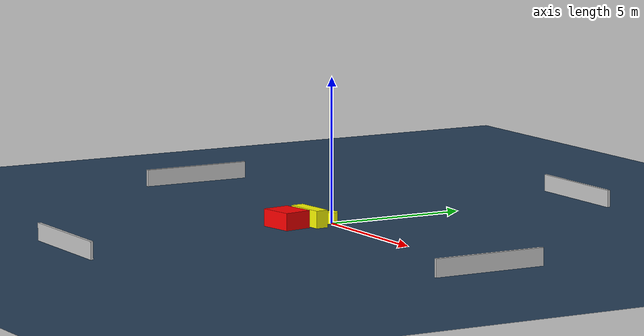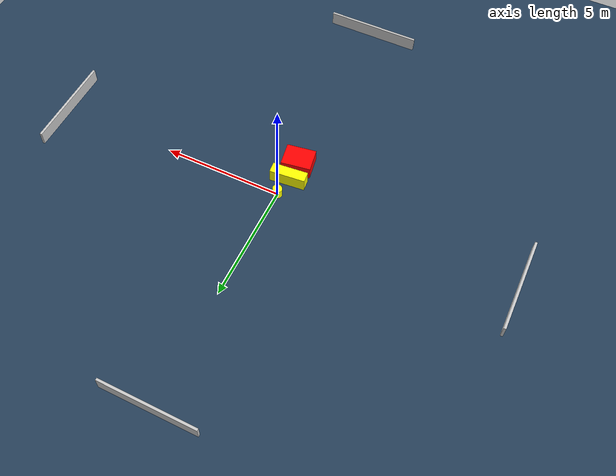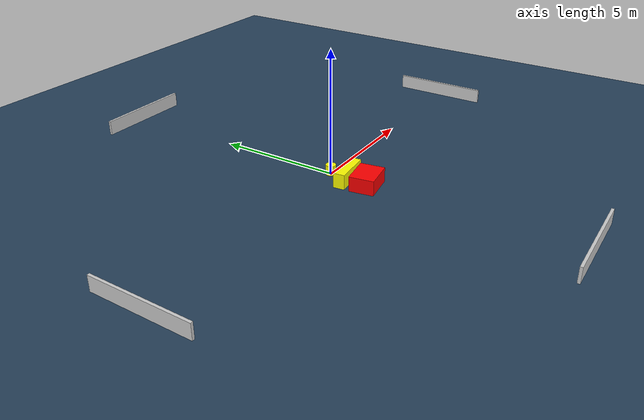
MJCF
<?xml version="1.0" ?>
<mujoco model="generated_environment">
  <option timestep="0.01" integrator="RK4" cone="elliptic"/>
  <default>
    <geom density="1"/>
  </default>
  <asset>
    <texture builtin="gradient" height="3072" name="skybox" rgb1="0.3 0.5 0.7" rgb2="0 0 0" type="skybox" width="512"/>
    <texture builtin="checker" height="300" name="groundplane" rgb1="0.2 0.3 0.4" rgb2="0.1 0.2 0.3" type="2d" width="300"/>
    <material name="groundplane" reflectance="0.2" texrepeat="5 5" texture="groundplane"/>
  </asset>
  <worldbody>
    <light dir="0 0 -1" directional="true" pos="0 0 1.5"/>
    <geom condim="3" friction="0.5 0.005 0.001" material="groundplane" name="floor" pos="0 0 0" size="0 0 0.05" type="plane"/>
    <body name="walls">
      <geom name="wall_1" condim="4" pos="-10.0 0.0 0.3" rgba="0.800000011920929 0.800000011920929 0.800000011920929 1.0" size="0.05 2.0 0.3" type="box"/>
      <geom name="wall_2" condim="4" pos="10.0 0.0 0.3" rgba="0.800000011920929 0.800000011920929 0.800000011920929 1.0" size="0.05 2.0 0.3" type="box"/>
      <geom name="wall_3" condim="4" pos="0.0 -10.0 0.3" rgba="0.800000011920929 0.800000011920929 0.800000011920929 1.0" size="2.0 0.05 0.3" type="box"/>
      <geom name="wall_4" condim="4" pos="0.0 10.0 0.3" rgba="0.800000011920929 0.800000011920929 0.800000011920929 1.0" size="2.0 0.05 0.3" type="box"/>
    </body>
    <body name="robot">
      <joint name="joint_x" type="slide" pos="0 0 0" axis="1 0 0"/>
      <joint name="joint_y" type="slide" pos="0 0 0" axis="0 1 0"/>
      <geom name="robot" type="cylinder" pos="0.0 0.0 0.2" size="0.2 0.2 0.0" mass="5.0" friction="1.0 0.005 0.0001" condim="4" rgba="1.0 1.0 0.0 1.0"/>
    </body>
    <body name="obstacle_1_movable">
      <geom name="obstacle_1_movable" condim="4" pos="-0.11276813057142357 -0.8068589400156974 0.3" euler="0 0 95.67257059962489" friction="0.0 0.005 0.001" rgba="1.0 1.0 0.0 1.0" size="0.22720777083556024 0.7407268864419216 0.3" type="box" mass="0.1"/>
      <joint type="free"/>
    </body>
    <body name="obstacle_2_static">
      <geom name="obstacle_2_static" condim="4" pos="-0.14127162490051726 -1.6750249544093248 0.3" euler="0 0 9.204183728017025" friction="0.0 0.005 0.001" rgba="1.0 0.0 0.0 1.0" size="0.6166188338855358 0.4887384859850586 0.3" type="box"/>
    </body>
  </worldbody>
  <actuator>
    <motor name="actuator_x" joint="joint_x" gear="1" ctrlrange="-1 1"/>
    <motor name="actuator_y" joint="joint_y" gear="1" ctrlrange="-1 1"/>
  </actuator>
</mujoco>
